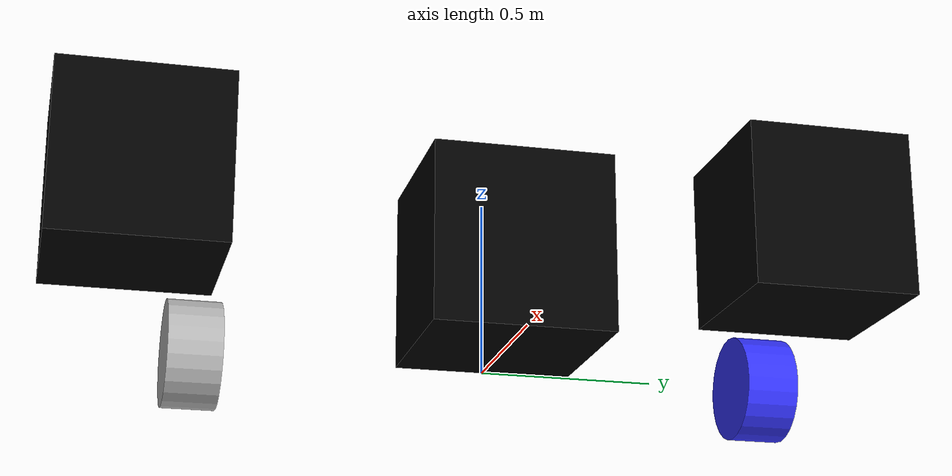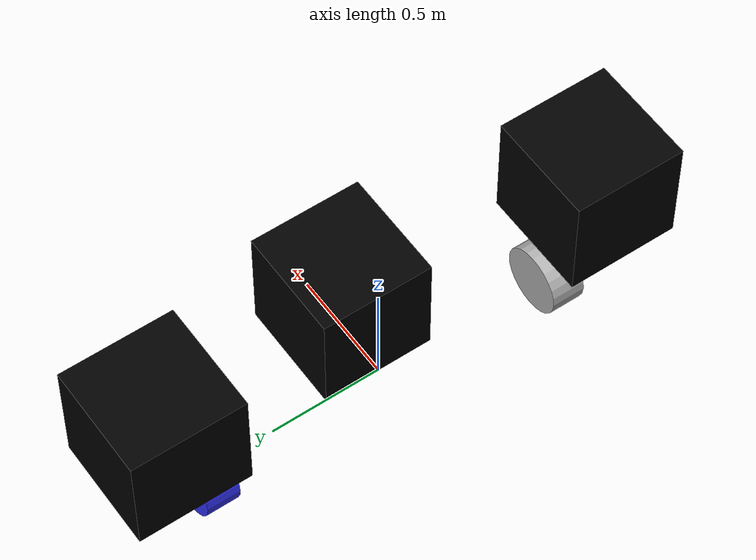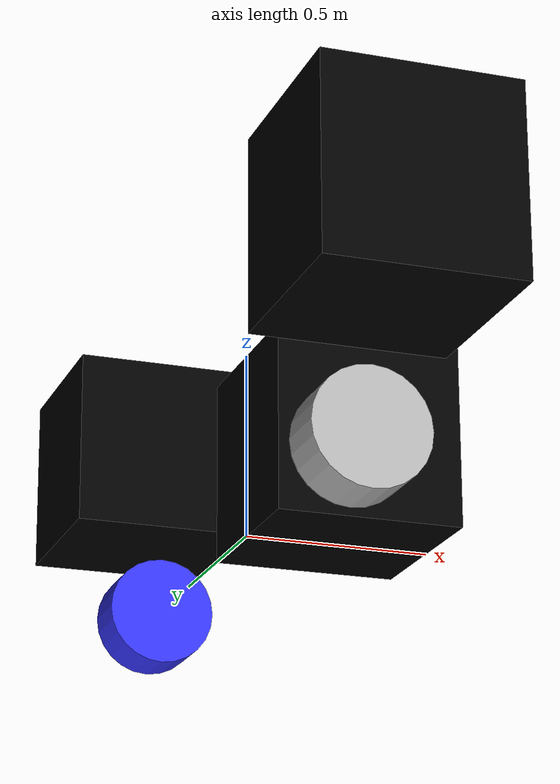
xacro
<?xml version="1.0"?>
<robot xmlns:xacro="http://ros.org/wiki/xacro" name="roombav2">

    <xacro:include filename="constants.xacro" />
    <xacro:include filename="inertial_macros.xacro" />

    <!-- defining the colors of your microver -->
    <material name="black">
        <color rgba="0 0 0 1" />
    </material>
    <material name="white">
        <color rgba="1 1 1 1" />
    </material>
    <material name="blue">
        <color rgba="0.2 0.2 1 1" />
    </material>

    <!-- the base link located in the middle of the line between the center of both back wheels -->
    <link name="base_link">
    </link>

                    <!-- ####################### JOINTS ########################## -->

    <joint name="chassis_joint" type="fixed">
        <origin xyz="0 0 0" rpy="0 0 0" />
        <parent link="base_link" />
        <child link="chassis" />
    </joint>

    <!-- WHEEL JOINTS -->

    <joint name="front_left_wheel_joint" type="continuous">
        <origin xyz="${LENGTH - LEG_LENGTH} ${((WIDTH/2) + LEG_WIDTH + (WHEEL_WIDTH/2))} 0" rpy="-${pi/2} 0 0" />
        <parent link="base_link" />
        <child link="front_left_wheel_link" />
        <axis xyz="0 0 1"/>
    </joint>

    <joint name="front_right_wheel_joint" type="continuous">
        <origin xyz="${LENGTH - LEG_LENGTH} ${-((WIDTH/2) + LEG_WIDTH + (WHEEL_WIDTH/2))} 0" rpy="${pi/2} 0 0" />
        <parent link="base_link" />
        <child link="front_right_wheel_link" />
        <axis xyz="0 0 -1"/>
    </joint>

    <joint name="back_left_wheel_joint" type="continuous">
        <origin xyz="0 ${((WIDTH/2) + LEG_WIDTH + (WHEEL_WIDTH/2))} 0" rpy="-${pi/2} 0 0" />
        <parent link="base_link" />
        <child link="back_left_wheel_link" />
        <axis xyz="0 0 1"/>
    </joint>

    <joint name="back_right_wheel_joint" type="continuous">
        <origin xyz="0 ${-((WIDTH/2) + LEG_WIDTH + (WHEEL_WIDTH/2))} 0" rpy="${pi/2} 0 0" />
        <parent link="base_link" />
        <child link="back_right_wheel_link" />
        <axis xyz="0 0 -1"/>
    </joint>

    <!-- LEG JOINTS = FIXED -->

    <joint name="back_left_leg_joint" type="fixed">
        <origin xyz="0 ${((WIDTH/2)+(LEG_WIDTH/2))} ${LEG_HEIGHT/2}" rpy="0 0 0" />
        <parent link="base_link" />
        <child link="back_left_leg_link" />
    </joint>

    <joint name="back_right_leg_joint" type="fixed">
        <origin xyz="0 ${-((WIDTH/2)+(LEG_WIDTH/2))} ${LEG_HEIGHT/2}" rpy="0 0 0" />
        <parent link="base_link" />
        <child link="back_right_leg_link" />
    </joint>

    <joint name="front_left_leg_joint" type="fixed">
        <origin xyz="${LENGTH - LEG_LENGTH} ${((WIDTH/2)+(LEG_WIDTH/2))} ${LEG_HEIGHT/2}" rpy="0 0 0" />
        <parent link="base_link" />
        <child link="front_left_leg_link" />
    </joint>

    <joint name="front_right_leg_joint" type="fixed">
        <origin xyz="${LENGTH - LEG_LENGTH} ${-((WIDTH/2)+(LEG_WIDTH/2))} ${LEG_HEIGHT/2}"
            rpy="0 0 0" />
        <parent link="base_link" />
        <child link="front_right_leg_link" />
    </joint>

                    <!-- ####################### LINKS ########################## -->

    <link name="chassis">
        <visual>
            <geometry>
                <box size="${LENGTH} ${WIDTH} ${HEIGHT}" />
            </geometry>
            <origin xyz="${LENGTH/2} 0 ${HEIGHT/2}" rpy="0 0 0"/>
            <material name="black" />
        </visual>
        <collision>
            <geometry>
                <box size="${LENGTH} ${WIDTH} ${HEIGHT}" />
            </geometry>
            <origin xyz="${LENGTH/2} 0 ${HEIGHT/2}" rpy="0 0 0"/>
        </collision>
        <xacro:inertial_box mass="${MASS}" x="${LENGTH}" y="${WIDTH}" z="${HEIGHT}">
            <origin xyz="${LENGTH/2} 0 ${HEIGHT/2}" rpy="0 0 0"/>
        </xacro:inertial_box>
    </link>

                                        <!-- LEG LINKS -->
    <!-- need to add inertias for the legs -->
    <link name="back_left_leg_link">
        <visual>
            <geometry>
                <box size="${LEG_LENGTH} ${LEG_WIDTH} ${LEG_HEIGHT}" />
            </geometry>
            <origin xyz="0 ${((WIDTH/2)+(LEG_WIDTH/2))} ${LEG_HEIGHT/2}" />
            <material name="black" />
        </visual>
        <collision>
            <geometry>
                <box size="${LEG_LENGTH} ${LEG_WIDTH} ${LEG_HEIGHT}" />
            </geometry>
            <origin xyz="0 ${((WIDTH/2)+(LEG_WIDTH/2))} ${LEG_HEIGHT/2}" />
        </collision>
        <xacro:inertial_box mass="${LEG_MASS}" x="${LEG_LENGTH}" y="${LEG_WIDTH}" z="${LEG_HEIGHT}">
            <origin xyz="0 ${((WIDTH/2)+(LEG_WIDTH/2))} ${LEG_HEIGHT/2}" />
        </xacro:inertial_box>
    </link>

    <link name="back_right_leg_link">
        <visual>
            <geometry>
                <box size="${LEG_LENGTH} ${LEG_WIDTH} ${LEG_HEIGHT}" />
            </geometry>
            <origin xyz="0 ${-((WIDTH/2)+(LEG_WIDTH/2))} ${LEG_HEIGHT/2}" />
            <material name="black" />
        </visual>
        <collision>
            <geometry>
                <box size="${LEG_LENGTH} ${LEG_WIDTH} ${LEG_HEIGHT}" />
            </geometry>
            <origin xyz="0 ${-((WIDTH/2)+(LEG_WIDTH/2))} ${LEG_HEIGHT/2}" />
        </collision>
        <xacro:inertial_box mass="${LEG_MASS}" x="${LEG_LENGTH}" y="${LEG_WIDTH}" z="${LEG_HEIGHT}">
            <origin xyz="0 ${-((WIDTH/2)+(LEG_WIDTH/2))} ${LEG_HEIGHT/2}" />
        </xacro:inertial_box>
    </link>

    <link name="front_left_leg_link">
        <visual>
            <geometry>
                <box size="${LEG_LENGTH} ${LEG_WIDTH} ${LEG_HEIGHT}" />
            </geometry>
            <origin xyz="${LENGTH - LEG_LENGTH} ${((WIDTH/2)+(LEG_WIDTH/2))} ${LEG_HEIGHT/2}" />
            <material name="black" />
        </visual>
        <collision>
            <geometry>
                <box size="${LEG_LENGTH} ${LEG_WIDTH} ${LEG_HEIGHT}" />
            </geometry>
            <origin xyz="${LENGTH - LEG_LENGTH} ${((WIDTH/2)+(LEG_WIDTH/2))} ${LEG_HEIGHT/2}" />
        </collision>
        <xacro:inertial_box mass="${LEG_MASS}" x="${LEG_LENGTH}" y="${LEG_WIDTH}" z="${LEG_HEIGHT}">
            <origin xyz="${LENGTH - LEG_LENGTH} ${((WIDTH/2)+(LEG_WIDTH/2))} ${LEG_HEIGHT/2}" />
        </xacro:inertial_box>

    </link>

    <link name="front_right_leg_link">
        <visual>
            <geometry>
                <box size="${LEG_LENGTH} ${LEG_WIDTH} ${LEG_HEIGHT}" />
            </geometry>
            <origin xyz="${LENGTH - LEG_LENGTH} ${-((WIDTH/2)+(LEG_WIDTH/2))} ${LEG_HEIGHT/2}" />
            <material name="black" />
        </visual>
        <collision>
            <geometry>
                <box size="${LEG_LENGTH} ${LEG_WIDTH} ${LEG_HEIGHT}" />
            </geometry>
            <origin xyz="${LENGTH - LEG_LENGTH} ${-((WIDTH/2)+(LEG_WIDTH/2))} ${LEG_HEIGHT/2}" />
        </collision>
        <xacro:inertial_box mass="${LEG_MASS}" x="${LEG_LENGTH}" y="${LEG_WIDTH}" z="${LEG_HEIGHT}">
            <origin xyz="${LENGTH - LEG_LENGTH} ${-((WIDTH/2)+(LEG_WIDTH/2))} ${LEG_HEIGHT/2}" />
        </xacro:inertial_box>
    </link>

                                        <!-- WHEEL LINKS -->

    <link name="front_left_wheel_link">
        <visual>
            <geometry>
                <cylinder radius="${WHEEL_RADIUS}" length="${WHEEL_WIDTH}" />
            </geometry>
            <material name="blue" />
        </visual>
        <collision>
            <geometry>
                <cylinder radius="${WHEEL_RADIUS}" length="${WHEEL_WIDTH}" />
            </geometry>
        </collision>
        <xacro:inertial_cylinder mass="${WHEEL_MASS}" length="${WHEEL_WIDTH}" radius="${WHEEL_RADIUS}">
            <origin xyz="0 0 0" rpy="0 0 0"/>
        </xacro:inertial_cylinder>
    </link>

    <link name="front_right_wheel_link">
        <visual>
            <geometry>
                <cylinder radius="${WHEEL_RADIUS}" length="${WHEEL_WIDTH}" />
            </geometry>
        </visual>
        <collision>
            <geometry>
                <cylinder radius="${WHEEL_RADIUS}" length="${WHEEL_WIDTH}" />
            </geometry>
        </collision>
        <xacro:inertial_cylinder mass="${WHEEL_MASS}" length="${WHEEL_WIDTH}" radius="${WHEEL_RADIUS}">
            <origin xyz="0 0 0" rpy="0 0 0"/>
        </xacro:inertial_cylinder>
    </link>

    <link name="back_left_wheel_link">
        <visual>
            <geometry>
                <cylinder radius="${WHEEL_RADIUS}" length="${WHEEL_WIDTH}" />
            </geometry>
        </visual>
        <collision>
            <geometry>
                <cylinder radius="${WHEEL_RADIUS}" length="${WHEEL_WIDTH}" />
            </geometry>
        </collision>
        <xacro:inertial_cylinder mass="${WHEEL_MASS}" length="${WHEEL_WIDTH}" radius="${WHEEL_RADIUS}">
            <origin xyz="0 0 0" rpy="0 0 0"/>
        </xacro:inertial_cylinder>
    </link>

    <link name="back_right_wheel_link">
        <visual>
            <geometry>
                <cylinder radius="${WHEEL_RADIUS}" length="${WHEEL_WIDTH}" />
            </geometry>
        </visual>
        <collision>
            <geometry>
                <cylinder radius="${WHEEL_RADIUS}" length="${WHEEL_WIDTH}" />
            </geometry>
        </collision>
        <xacro:inertial_cylinder mass="${WHEEL_MASS}" length="${WHEEL_WIDTH}" radius="${WHEEL_RADIUS}">
            <origin xyz="0 0 0" rpy="0 0 0"/>
        </xacro:inertial_cylinder>
    </link>

</robot>

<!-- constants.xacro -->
<robot xmlns:xacro="http://ros.org/wiki/xacro">

    <xacro:property name="MAX_SPEED" value="0.5" />
    <xacro:property name="MIN_SPEED" value="0.1" />

    <xacro:property name="WHEEL_RADIUS" value="0.15" />
    <xacro:property name="WHEEL_WIDTH" value="0.15" />
    <xacro:property name="WHEELBASE" value="0.5" />
    <xacro:property name="HEIGHT" value="0.5" />
    <xacro:property name="LENGTH" value="0.5" />
    <xacro:property name="WIDTH" value="0.5" />
    <xacro:property name="LEG_WIDTH" value="0.5" />
    <xacro:property name="LEG_HEIGHT" value="0.5" />
    <xacro:property name="LEG_LENGTH" value="0.5" />

    <xacro:property name="MASS" value="3" />
    <xacro:property name="WHEEL_MASS" value="3" />
    <xacro:property name="LEG_MASS" value="0.2" />

</robot>
